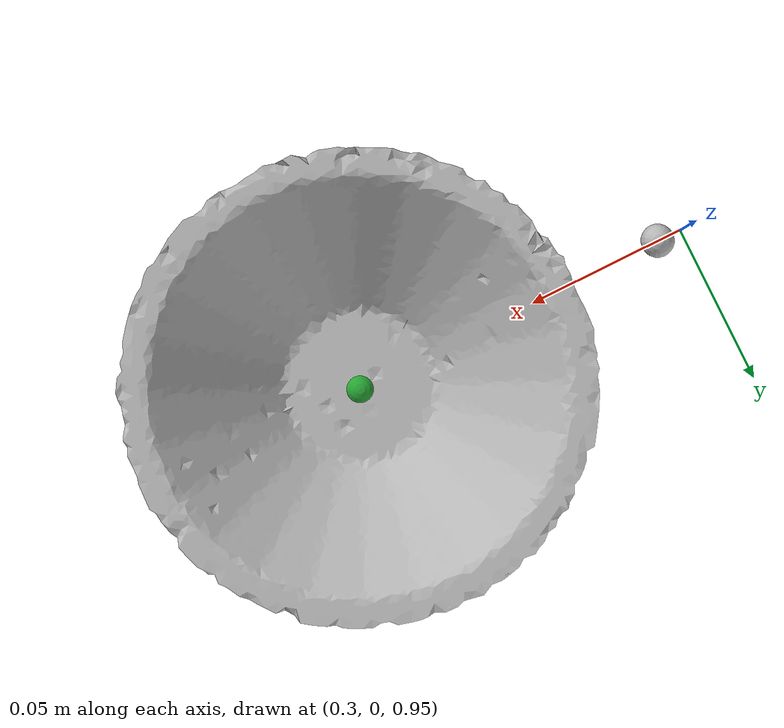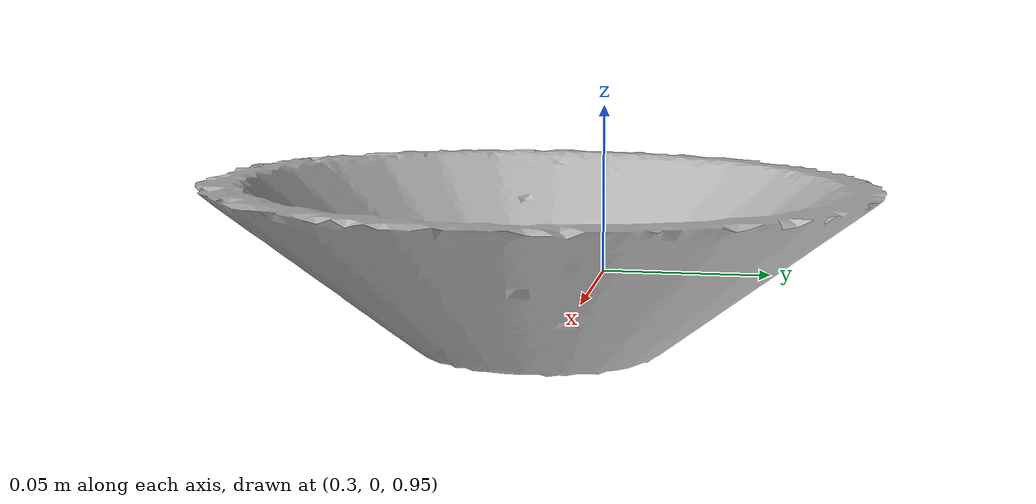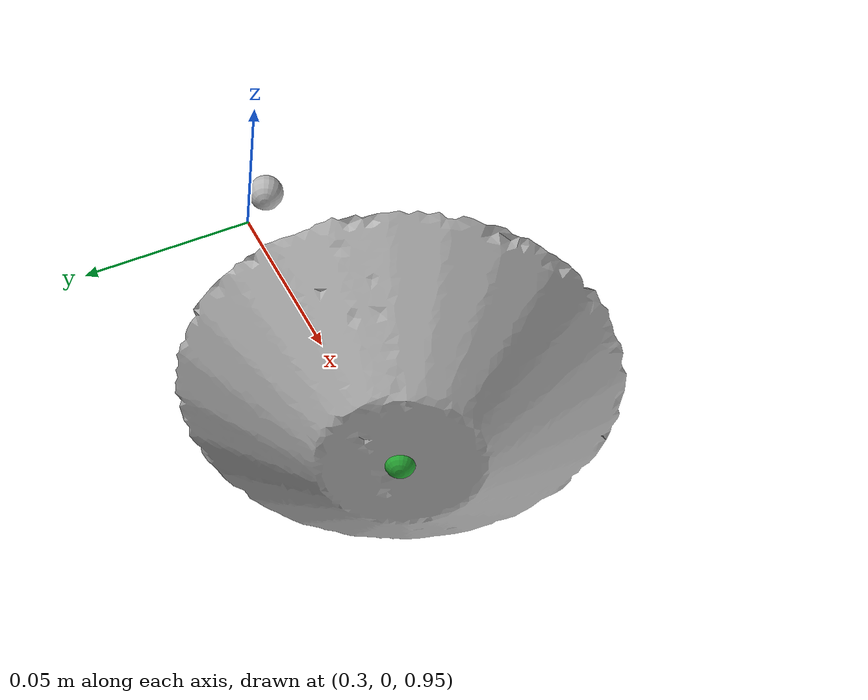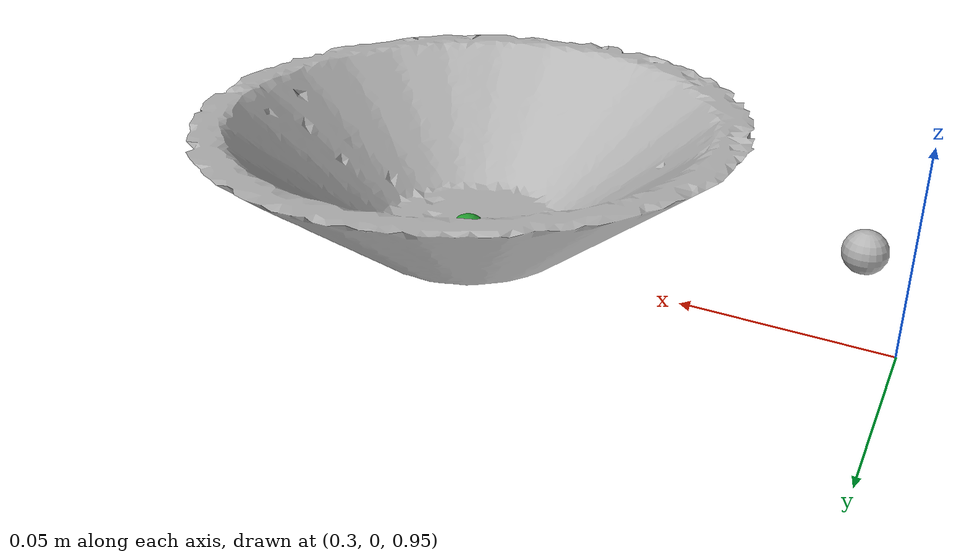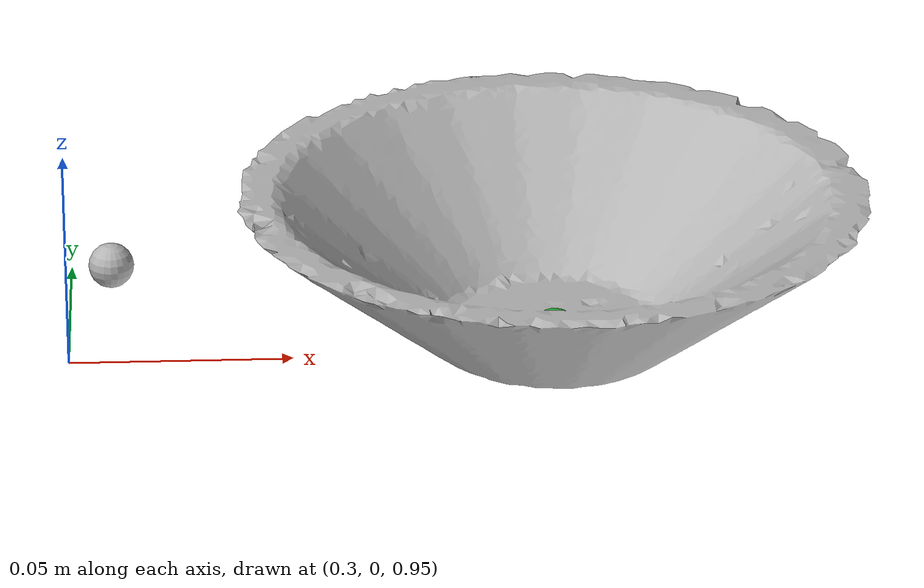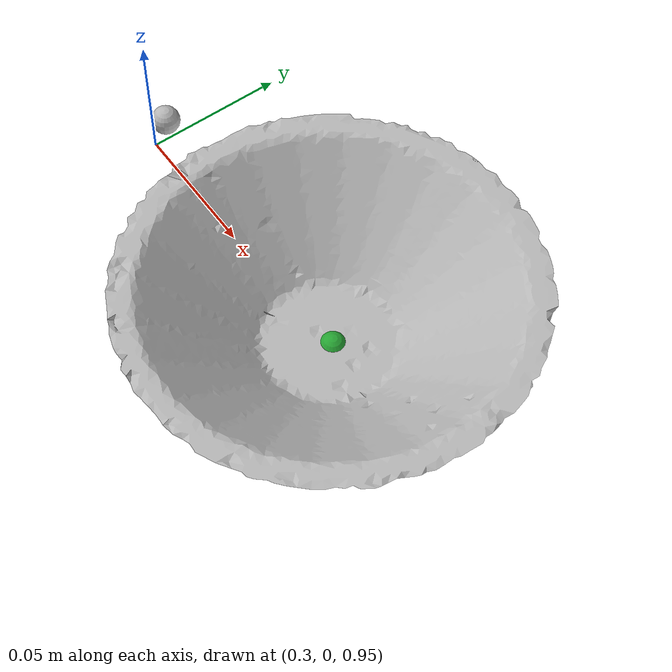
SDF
<?xml version='1.0'?>
<sdf version='1.6'>
<model name="scooper">
<static>false</static>
<pose> 0 0 0 0 0 0 </pose>

<link name='tool'>
	<pose>0.4083 0.0000 0.9739 0.000 0.000 0.000</pose>
	<inertial>
		<pose>0.0000 0.0000 0.0000 0 0 0</pose>
		<mass>0.2530</mass>
	</inertial>
	<collision name='tool_collision'>
		<geometry>
			<mesh><uri>model://tool_scooping_grains/tool.dae</uri></mesh>
		</geometry>
	</collision>
	<visual name='tool_visual'>
		<geometry>
			<mesh><uri>model://tool_scooping_grains/tool.dae</uri></mesh>
		</geometry>
	</visual>
	<sensor name='tool_contact' type='contact'>
		<plugin filename="libgrain_collision.so" name="grain_collision" />
		<contact>
			<collision>tool_collision</collision>
		</contact>
	</sensor>
</link>

<model name="elbow_model">
	<pose>0.31 0.0000 0.9739 0 0 0</pose>
	<static>true</static>
	<link name="elbow_link">
		<pose>0 0 0 0 0 0</pose>
		<visual name="elbow_visual">
			<geometry><sphere>
				<radius>0.005</radius>
			</sphere></geometry>
		</visual>
	</link>
</model>

	<joint name="joint_elbow" type="revolute">
		<parent>tool</parent>
		<child>elbow_link</child>
		<axis>
			<xyz>0 1 0</xyz>
			<use_parent_model_frame>1</use_parent_model_frame>
			<dynamics>
				<friction>0.1</friction>
			</dynamics>
		</axis>
	</joint>

<model name="action_bottom_model">
	<pose>0 0 0 0 0 0</pose>
	<link name="action_bottom_link">
		<pose>0.4083 0.0000 0.9556 0 0 0</pose>
		<visual name="action_bottom_visual">
			<geometry>
				<sphere>
					<radius>0.005</radius>
				</sphere>
			</geometry>
			<material>
				<script>
					<uri>file://media/materials/scripts/gazebo.material</uri>
					<name>Gazebo/Green</name>
				</script>
			</material>
		</visual>
	</link>
</model>

<joint name="joint_action_bottom" type="revolute">
	<parent>tool</parent>
	<child>action_bottom_link</child>
	<axis>
		<xyz>0 1 0</xyz>
		<use_parent_model_frame>1</use_parent_model_frame>
		<dynamics>
			<friction>0.1</friction>
		</dynamics>
	</axis>
</joint>

<plugin filename="libscoop.so" name="scoop"/>

</model>
</sdf>
